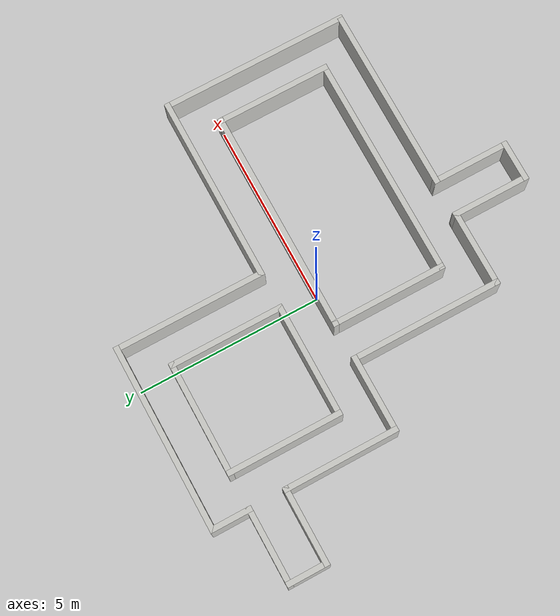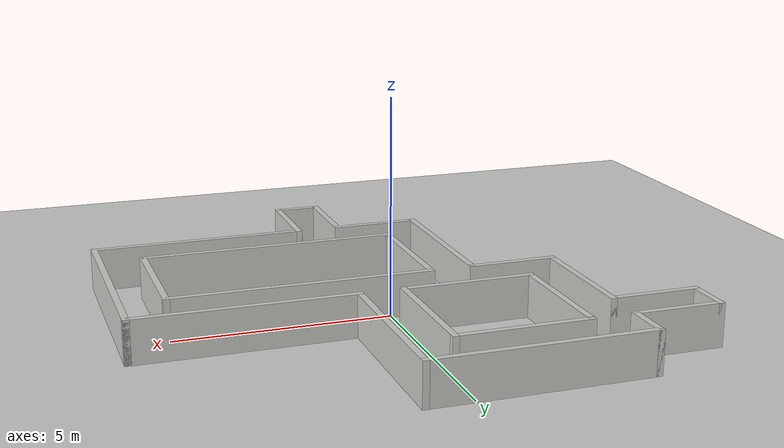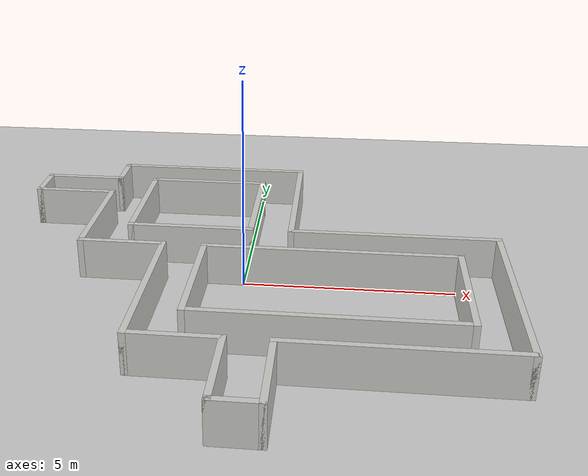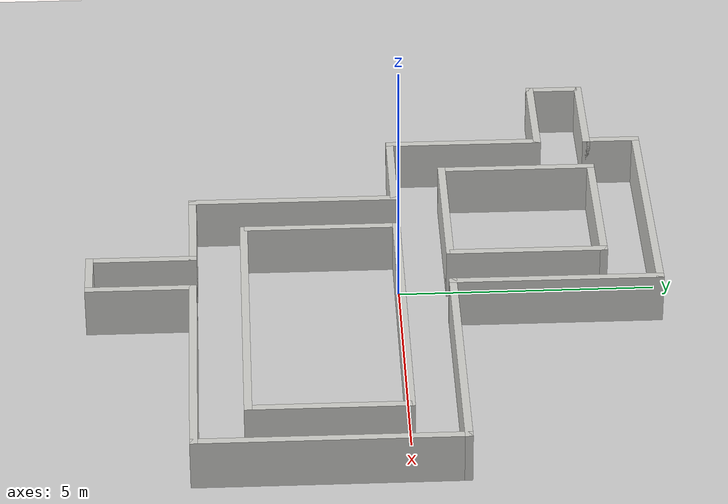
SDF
<sdf version="1.6">
 <world name="default">
  <light name="sun" type="directional">
   <pose>0 0 10 0 -0 0</pose>
   <diffuse>0.8 0.8 0.8 1</diffuse>
   <specular>0.2 0.2 0.2 1</specular>
   <attenuation>
    <range>1000</range>
    <constant>0.9</constant>
    <linear>0.01</linear>
    <quadratic>0.001</quadratic>
   </attenuation>
   <direction>-0.5 0.1 -0.9</direction>
  </light>
  <model name="ground_plane">
   <static>1</static>
   <link name="link">
    <collision name="collision">
     <geometry><plane><normal>0 0 1</normal><size>100 100</size></plane></geometry>
     <surface><friction><ode><mu>100</mu><mu2>50</mu2></ode></friction></surface>
    </collision>
    <visual name="visual">
     <cast_shadows>0</cast_shadows>
     <geometry><plane><normal>0 0 1</normal><size>100 100</size></plane></geometry>
     <material>
      <script><uri>file://media/materials/scripts/gazebo.material</uri><name>Gazebo/Grey</name></script>
     </material>
    </visual>
   </link>
  </model>
  <gravity>0 0 -9.8</gravity>
  <magnetic_field>6e-06 2.3e-05 -4.2e-05</magnetic_field>
  <atmosphere type="adiabatic"/>
  <physics name="default_physics" default="0" type="ode">
   <max_step_size>0.001</max_step_size>
   <real_time_factor>1</real_time_factor>
   <real_time_update_rate>1000</real_time_update_rate>
  </physics>
  <scene><ambient>0.4 0.4 0.4 1</ambient><background>0.7 0.7 0.7 1</background><shadows>1</shadows></scene>
  <spherical_coordinates>
   <surface_model>EARTH_WGS84</surface_model>
   <latitude_deg>0</latitude_deg>
   <longitude_deg>0</longitude_deg>
   <elevation>0</elevation>
   <heading_deg>0</heading_deg>
  </spherical_coordinates>
  <model name="thesis_model">
   <pose>0.05085 -0.49992 0 0 -0 0</pose>
   <link name="Wall_0">
    <collision name="Wall_0_Collision">
     <geometry><box><size>1.15 0.15 1</size></box></geometry>
     <pose>0 0 0.5 0 -0 0</pose>
    </collision>
    <visual name="Wall_0_Visual">
     <pose>0 0 0.5 0 -0 0</pose>
     <geometry><box><size>1.15 0.15 1</size></box></geometry>
     <material>
      <script><uri>file://media/materials/scripts/gazebo.material</uri><name>Gazebo/CeilingTiled</name></script>
      <ambient>1 1 1 1</ambient>
     </material>
     <meta><layer>0</layer></meta>
    </visual>
    <pose>-6 3.99992 0 0 0 -1.5708</pose>
   </link>
   <link name="Wall_10">
    <collision name="Wall_10_Collision">
     <geometry><box><size>5.15 0.15 1</size></box></geometry>
     <pose>0 0 0.5 0 -0 0</pose>
    </collision>
    <visual name="Wall_10_Visual">
     <pose>0 0 0.5 0 -0 0</pose>
     <geometry><box><size>5.15 0.15 1</size></box></geometry>
     <material>
      <script><uri>file://media/materials/scripts/gazebo.material</uri><name>Gazebo/CeilingTiled</name></script>
      <ambient>1 1 1 1</ambient>
     </material>
     <meta><layer>0</layer></meta>
    </visual>
    <pose>-1.5 5.49992 0 0 -0 0</pose>
   </link>
   <link name="Wall_11">
    <collision name="Wall_11_Collision">
     <geometry><box><size>4.15031 0.15 1</size></box></geometry>
     <pose>0 0 0.5 0 -0 0</pose>
    </collision>
    <visual name="Wall_11_Visual">
     <pose>0 0 0.5 0 -0 0</pose>
     <geometry><box><size>4.15031 0.15 1</size></box></geometry>
     <material>
      <script><uri>file://media/materials/scripts/gazebo.material</uri><name>Gazebo/CeilingTiled</name></script>
      <ambient>1 1 1 1</ambient>
     </material>
     <meta><layer>0</layer></meta>
    </visual>
    <pose>1 3.49992 0 0 0 -1.5708</pose>
   </link>
   <link name="Wall_12">
    <collision name="Wall_12_Collision">
     <geometry><box><size>5.15 0.15 1</size></box></geometry>
     <pose>0 0 0.5 0 -0 0</pose>
    </collision>
    <visual name="Wall_12_Visual">
     <pose>0 0 0.5 0 -0 0</pose>
     <geometry><box><size>5.15 0.15 1</size></box></geometry>
     <material>
      <script><uri>file://media/materials/scripts/gazebo.material</uri><name>Gazebo/CeilingTiled</name></script>
      <ambient>1 1 1 1</ambient>
     </material>
     <meta><layer>0</layer></meta>
    </visual>
    <pose>3.5 1.49992 0 0 -0 0</pose>
   </link>
   <link name="Wall_14">
    <collision name="Wall_14_Collision">
     <geometry><box><size>3.15 0.15 1</size></box></geometry>
     <pose>0 0 0.5 0 -0 0</pose>
    </collision>
    <visual name="Wall_14_Visual">
     <pose>0 0 0.5 0 -0 0</pose>
     <geometry><box><size>3.15 0.15 1</size></box></geometry>
     <material>
      <script><uri>file://media/materials/scripts/gazebo.material</uri><name>Gazebo/CeilingTiled</name></script>
      <ambient>1 1 1 1</ambient>
     </material>
     <meta><layer>0</layer></meta>
    </visual>
    <pose>-3 2.99992 0 0 0 -1.5708</pose>
   </link>
   <link name="Wall_15">
    <collision name="Wall_15_Collision">
     <geometry><box><size>3.15 0.15 1</size></box></geometry>
     <pose>0 0 0.5 0 -0 0</pose>
    </collision>
    <visual name="Wall_15_Visual">
     <pose>0 0 0.5 0 -0 0</pose>
     <geometry><box><size>3.15 0.15 1</size></box></geometry>
     <material>
      <script><uri>file://media/materials/scripts/gazebo.material</uri><name>Gazebo/CeilingTiled</name></script>
      <ambient>1 1 1 1</ambient>
     </material>
     <meta><layer>0</layer></meta>
    </visual>
    <pose>-1.5 1.49992 0 0 -0 0</pose>
   </link>
   <link name="Wall_16">
    <collision name="Wall_16_Collision">
     <geometry><box><size>3.15 0.15 1</size></box></geometry>
     <pose>0 0 0.5 0 -0 0</pose>
    </collision>
    <visual name="Wall_16_Visual">
     <pose>0 0 0.5 0 -0 0</pose>
     <geometry><box><size>3.15 0.15 1</size></box></geometry>
     <material>
      <script><uri>file://media/materials/scripts/gazebo.material</uri><name>Gazebo/CeilingTiled</name></script>
      <ambient>1 1 1 1</ambient>
     </material>
     <meta><layer>0</layer></meta>
    </visual>
    <pose>0 2.99992 0 0 -0 1.5708</pose>
   </link>
   <link name="Wall_17">
    <collision name="Wall_17_Collision">
     <geometry><box><size>3.15 0.15 1</size></box></geometry>
     <pose>0 0 0.5 0 -0 0</pose>
    </collision>
    <visual name="Wall_17_Visual">
     <pose>0 0 0.5 0 -0 0</pose>
     <geometry><box><size>3.15 0.15 1</size></box></geometry>
     <material>
      <script><uri>file://media/materials/scripts/gazebo.material</uri><name>Gazebo/CeilingTiled</name></script>
      <ambient>1 1 1 1</ambient>
     </material>
     <meta><layer>0</layer></meta>
    </visual>
    <pose>-1.5 4.49992 0 0 -0 3.14159</pose>
   </link>
   <link name="Wall_19">
    <collision name="Wall_19_Collision">
     <geometry><box><size>4.15 0.15 1</size></box></geometry>
     <pose>0 0 0.5 0 -0 0</pose>
    </collision>
    <visual name="Wall_19_Visual">
     <pose>0 0 0.5 0 -0 0</pose>
     <geometry><box><size>4.15 0.15 1</size></box></geometry>
     <material>
      <script><uri>file://media/materials/scripts/gazebo.material</uri><name>Gazebo/CeilingTiled</name></script>
      <ambient>1 1 1 1</ambient>
     </material>
     <meta><layer>0</layer></meta>
    </visual>
    <pose>-2 -1.50008 0 0 0 -1.5708</pose>
   </link>
   <link name="Wall_2">
    <collision name="Wall_2_Collision">
     <geometry><box><size>2.15 0.15 1</size></box></geometry>
     <pose>0 0 0.5 0 -0 0</pose>
    </collision>
    <visual name="Wall_2_Visual">
     <pose>0 0 0.5 0 -0 0</pose>
     <geometry><box><size>2.15 0.15 1</size></box></geometry>
     <material>
      <script><uri>file://media/materials/scripts/gazebo.material</uri><name>Gazebo/CeilingTiled</name></script>
      <ambient>1 1 1 1</ambient>
     </material>
     <meta><layer>0</layer></meta>
    </visual>
    <pose>-5 3.49992 0 0 -0 0</pose>
   </link>
   <link name="Wall_20">
    <collision name="Wall_20_Collision">
     <geometry><box><size>2.15 0.15 1</size></box></geometry>
     <pose>0 0 0.5 0 -0 0</pose>
    </collision>
    <visual name="Wall_20_Visual">
     <pose>0 0 0.5 0 -0 0</pose>
     <geometry><box><size>2.15 0.15 1</size></box></geometry>
     <material>
      <script><uri>file://media/materials/scripts/gazebo.material</uri><name>Gazebo/CeilingTiled</name></script>
      <ambient>1 1 1 1</ambient>
     </material>
     <meta><layer>0</layer></meta>
    </visual>
    <pose>-1 -3.50008 0 0 -0 0</pose>
   </link>
   <link name="Wall_21">
    <collision name="Wall_21_Collision">
     <geometry><box><size>2.15 0.15 1</size></box></geometry>
     <pose>0 0 0.5 0 -0 0</pose>
    </collision>
    <visual name="Wall_21_Visual">
     <pose>0 0 0.5 0 -0 0</pose>
     <geometry><box><size>2.15 0.15 1</size></box></geometry>
     <material>
      <script><uri>file://media/materials/scripts/gazebo.material</uri><name>Gazebo/CeilingTiled</name></script>
      <ambient>1 1 1 1</ambient>
     </material>
     <meta><layer>0</layer></meta>
    </visual>
    <pose>0 -4.50008 0 0 0 -1.5708</pose>
   </link>
   <link name="Wall_22">
    <collision name="Wall_22_Collision">
     <geometry><box><size>1.15 0.15 1</size></box></geometry>
     <pose>0 0 0.5 0 -0 0</pose>
    </collision>
    <visual name="Wall_22_Visual">
     <pose>0 0 0.5 0 -0 0</pose>
     <geometry><box><size>1.15 0.15 1</size></box></geometry>
     <material>
      <script><uri>file://media/materials/scripts/gazebo.material</uri><name>Gazebo/CeilingTiled</name></script>
      <ambient>1 1 1 1</ambient>
     </material>
     <meta><layer>0</layer></meta>
    </visual>
    <pose>0.5 -5.50008 0 0 -0 0</pose>
   </link>
   <link name="Wall_23">
    <collision name="Wall_23_Collision">
     <geometry><box><size>2.15 0.15 1</size></box></geometry>
     <pose>0 0 0.5 0 -0 0</pose>
    </collision>
    <visual name="Wall_23_Visual">
     <pose>0 0 0.5 0 -0 0</pose>
     <geometry><box><size>2.15 0.15 1</size></box></geometry>
     <material>
      <script><uri>file://media/materials/scripts/gazebo.material</uri><name>Gazebo/CeilingTiled</name></script>
      <ambient>1 1 1 1</ambient>
     </material>
     <meta><layer>0</layer></meta>
    </visual>
    <pose>1 -4.50008 0 0 -0 1.5708</pose>
   </link>
   <link name="Wall_24">
    <collision name="Wall_24_Collision">
     <geometry><box><size>5.15 0.15 1</size></box></geometry>
     <pose>0 0 0.5 0 -0 0</pose>
    </collision>
    <visual name="Wall_24_Visual">
     <pose>0 0 0.5 0 -0 0</pose>
     <geometry><box><size>5.15 0.15 1</size></box></geometry>
     <material>
      <script><uri>file://media/materials/scripts/gazebo.material</uri><name>Gazebo/CeilingTiled</name></script>
      <ambient>1 1 1 1</ambient>
     </material>
     <meta><layer>0</layer></meta>
    </visual>
    <pose>3.5 -3.50008 0 0 -0 0</pose>
   </link>
   <link name="Wall_25">
    <collision name="Wall_25_Collision">
     <geometry><box><size>5.15 0.15 1</size></box></geometry>
     <pose>0 0 0.5 0 -0 0</pose>
    </collision>
    <visual name="Wall_25_Visual">
     <pose>0 0 0.5 0 -0 0</pose>
     <geometry><box><size>5.15 0.15 1</size></box></geometry>
     <material>
      <script><uri>file://media/materials/scripts/gazebo.material</uri><name>Gazebo/CeilingTiled</name></script>
      <ambient>1 1 1 1</ambient>
     </material>
     <meta><layer>0</layer></meta>
    </visual>
    <pose>6 -1.00008 0 0 -0 1.5708</pose>
   </link>
   <link name="Wall_27">
    <collision name="Wall_27_Collision">
     <geometry><box><size>3.15 0.15 1</size></box></geometry>
     <pose>0 0 0.5 0 -0 0</pose>
    </collision>
    <visual name="Wall_27_Visual">
     <pose>0 0 0.5 0 -0 0</pose>
     <geometry><box><size>3.15 0.15 1</size></box></geometry>
     <material>
      <script><uri>file://media/materials/scripts/gazebo.material</uri><name>Gazebo/CeilingTiled</name></script>
      <ambient>1 1 1 1</ambient>
     </material>
     <meta><layer>0</layer></meta>
    </visual>
    <pose>-1 -1.00008 0 0 0 -1.5708</pose>
   </link>
   <link name="Wall_28">
    <collision name="Wall_28_Collision">
     <geometry><box><size>6.15 0.15 1</size></box></geometry>
     <pose>0 0 0.5 0 -0 0</pose>
    </collision>
    <visual name="Wall_28_Visual">
     <pose>0 0 0.5 0 -0 0</pose>
     <geometry><box><size>6.15 0.15 1</size></box></geometry>
     <material>
      <script><uri>file://media/materials/scripts/gazebo.material</uri><name>Gazebo/CeilingTiled</name></script>
      <ambient>1 1 1 1</ambient>
     </material>
     <meta><layer>0</layer></meta>
    </visual>
    <pose>2 -2.50008 0 0 -0 0</pose>
   </link>
   <link name="Wall_29">
    <collision name="Wall_29_Collision">
     <geometry><box><size>3.15 0.15 1</size></box></geometry>
     <pose>0 0 0.5 0 -0 0</pose>
    </collision>
    <visual name="Wall_29_Visual">
     <pose>0 0 0.5 0 -0 0</pose>
     <geometry><box><size>3.15 0.15 1</size></box></geometry>
     <material>
      <script><uri>file://media/materials/scripts/gazebo.material</uri><name>Gazebo/CeilingTiled</name></script>
      <ambient>1 1 1 1</ambient>
     </material>
     <meta><layer>0</layer></meta>
    </visual>
    <pose>5 -1.00008 0 0 -0 1.5708</pose>
   </link>
   <link name="Wall_30">
    <collision name="Wall_30_Collision">
     <geometry><box><size>6.15 0.15 1</size></box></geometry>
     <pose>0 0 0.5 0 -0 0</pose>
    </collision>
    <visual name="Wall_30_Visual">
     <pose>0 0 0.5 0 -0 0</pose>
     <geometry><box><size>6.15 0.15 1</size></box></geometry>
     <material>
      <script><uri>file://media/materials/scripts/gazebo.material</uri><name>Gazebo/CeilingTiled</name></script>
      <ambient>1 1 1 1</ambient>
     </material>
     <meta><layer>0</layer></meta>
    </visual>
    <pose>2 0.499922 0 0 -0 3.14159</pose>
   </link>
   <link name="Wall_4">
    <collision name="Wall_4_Collision">
     <geometry><box><size>3.15 0.15 1</size></box></geometry>
     <pose>0 0 0.5 0 -0 0</pose>
    </collision>
    <visual name="Wall_4_Visual">
     <pose>0 0 0.5 0 -0 0</pose>
     <geometry><box><size>3.15 0.15 1</size></box></geometry>
     <material>
      <script><uri>file://media/materials/scripts/gazebo.material</uri><name>Gazebo/CeilingTiled</name></script>
      <ambient>1 1 1 1</ambient>
     </material>
     <meta><layer>0</layer></meta>
    </visual>
    <pose>-4 1.99992 0 0 0 -1.5708</pose>
   </link>
   <link name="Wall_6">
    <collision name="Wall_6_Collision">
     <geometry><box><size>2.15 0.15 1</size></box></geometry>
     <pose>0 0 0.5 0 -0 0</pose>
    </collision>
    <visual name="Wall_6_Visual">
     <pose>0 0 0.5 0 -0 0</pose>
     <geometry><box><size>2.15 0.15 1</size></box></geometry>
     <material>
      <script><uri>file://media/materials/scripts/gazebo.material</uri><name>Gazebo/CeilingTiled</name></script>
      <ambient>1 1 1 1</ambient>
     </material>
     <meta><layer>0</layer></meta>
    </visual>
    <pose>-3 0.499922 0 0 -0 0</pose>
   </link>
   <link name="Wall_8">
    <collision name="Wall_8_Collision">
     <geometry><box><size>2.15 0.15 1</size></box></geometry>
     <pose>0 0 0.5 0 -0 0</pose>
    </collision>
    <visual name="Wall_8_Visual">
     <pose>0 0 0.5 0 -0 0</pose>
     <geometry><box><size>2.15 0.15 1</size></box></geometry>
     <material>
      <script><uri>file://media/materials/scripts/gazebo.material</uri><name>Gazebo/CeilingTiled</name></script>
      <ambient>1 1 1 1</ambient>
     </material>
     <meta><layer>0</layer></meta>
    </visual>
    <pose>-5 4.49992 0 0 -0 0</pose>
   </link>
   <link name="Wall_9">
    <collision name="Wall_9_Collision">
     <geometry><box><size>1.15 0.15 1</size></box></geometry>
     <pose>0 0 0.5 0 -0 0</pose>
    </collision>
    <visual name="Wall_9_Visual">
     <pose>0 0 0.5 0 -0 0</pose>
     <geometry><box><size>1.15 0.15 1</size></box></geometry>
     <material>
      <script><uri>file://media/materials/scripts/gazebo.material</uri><name>Gazebo/CeilingTiled</name></script>
      <ambient>1 1 1 1</ambient>
     </material>
     <meta><layer>0</layer></meta>
    </visual>
    <pose>-4 4.99992 0 0 -0 1.5708</pose>
   </link>
   <static>1</static>
  </model>
 </world>
</sdf>
